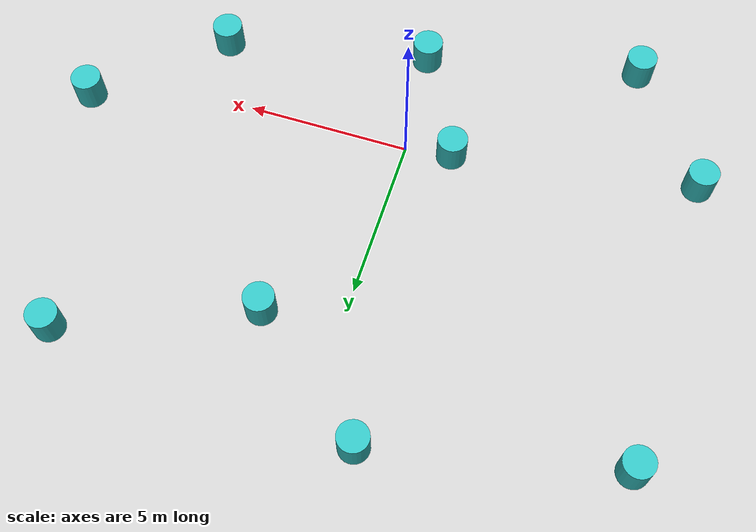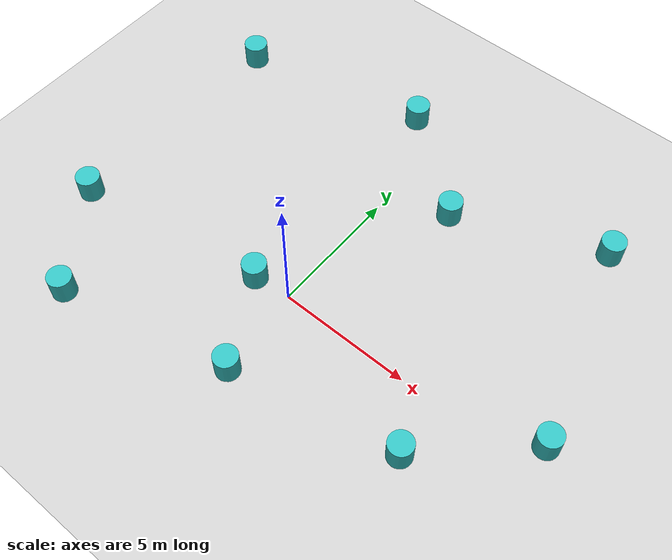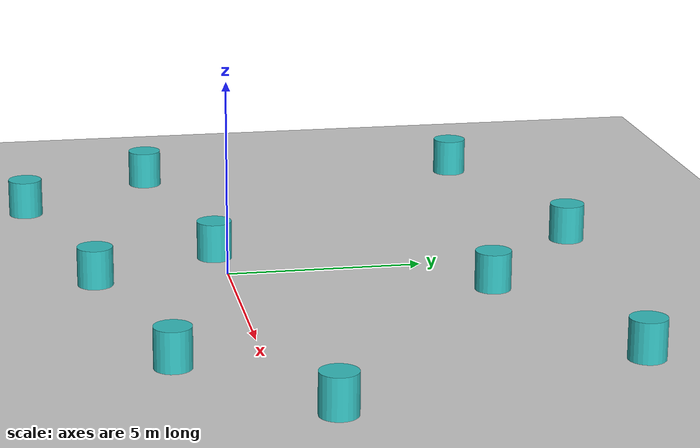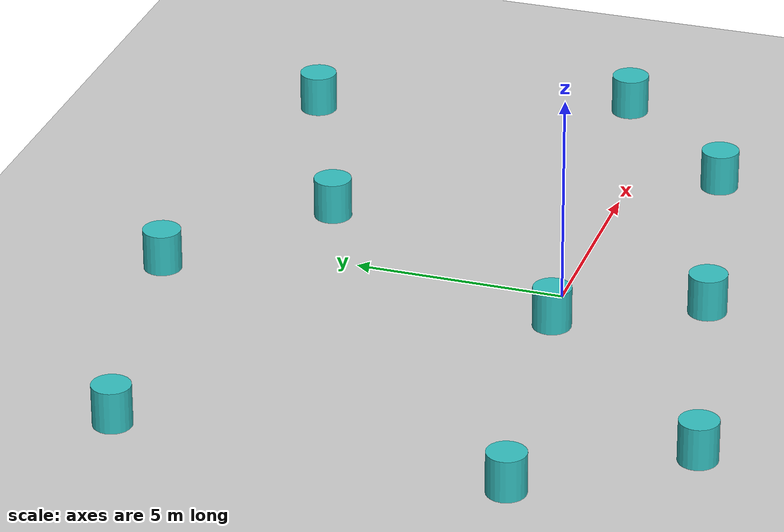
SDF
<sdf version="1.6">
 <world name="default">
  <light name="sun" type="directional">
   <pose>0 0 10 0 -0 0</pose>
   <diffuse>0.8 0.8 0.8 1</diffuse>
   <specular>0.2 0.2 0.2 1</specular>
   <attenuation>
    <range>1000</range>
    <constant>0.9</constant>
    <linear>0.01</linear>
    <quadratic>0.001</quadratic>
   </attenuation>
   <direction>-0.5 0.1 -0.9</direction>
  </light>
  <model name="ground_plane">
   <static>1</static>
   <link name="link">
    <collision name="collision">
     <geometry><plane><normal>0 0 1</normal><size>20 20</size></plane></geometry>
     <surface><friction><ode><mu>100</mu><mu2>50</mu2></ode></friction></surface>
    </collision>
    <visual name="visual">
     <cast_shadows>0</cast_shadows>
     <geometry><plane><normal>0 0 1</normal><size>20 20</size></plane></geometry>
     <material>
      <script><uri>file://media/materials/scripts/gazebo.material</uri><name>Gazebo/Grey</name></script>
     </material>
    </visual>
   </link>
  </model>
  <gravity>0 0 -9.8</gravity>
  <magnetic_field>6e-06 2.3e-05 -4.2e-05</magnetic_field>
  <atmosphere type="adiabatic"/>
  <physics name="default_physics" default="0" type="ode">
   <max_step_size>0.001</max_step_size>
   <real_time_factor>1</real_time_factor>
   <real_time_update_rate>1000</real_time_update_rate>
  </physics>
  <scene><ambient>0.4 0.4 0.4 1</ambient><background>0.7 0.7 0.7 1</background><shadows>1</shadows></scene>
  <spherical_coordinates>
   <surface_model>EARTH_WGS84</surface_model>
   <latitude_deg>0</latitude_deg>
   <longitude_deg>0</longitude_deg>
   <elevation>0</elevation>
   <heading_deg>0</heading_deg>
  </spherical_coordinates>
  <model name="unit_cylinder">
   <pose>9.937 1.0708 0.499998 3e-06 -2e-06 0</pose>
   <link name="link">
    <inertial>
     <mass>1</mass>
     <inertia><ixx>0.145833</ixx><ixy>0</ixy><ixz>0</ixz><iyy>0.145833</iyy><iyz>0</iyz><izz>0.125</izz></inertia>
    </inertial>
    <collision name="collision">
     <geometry><cylinder><radius>0.455</radius><length>1</length></cylinder></geometry>
    </collision>
    <visual name="visual">
     <geometry><cylinder><radius>0.455</radius><length>1</length></cylinder></geometry>
     <material>
      <script><name>Gazebo/Turquoise</name><uri>file://media/materials/scripts/gazebo.material</uri></script>
     </material>
    </visual>
   </link>
  </model>
  <model name="unit_cylinder_0">
   <pose>0.309204 -3.3864 0.499992 -3e-06 4e-06 0</pose>
   <link name="link">
    <inertial>
     <mass>1</mass>
     <inertia><ixx>0.145833</ixx><ixy>0</ixy><ixz>0</ixz><iyy>0.145833</iyy><iyz>0</iyz><izz>0.125</izz></inertia>
    </inertial>
    <collision name="collision">
     <geometry><cylinder><radius>0.455</radius><length>1</length></cylinder></geometry>
    </collision>
    <visual name="visual">
     <geometry><cylinder><radius>0.455</radius><length>1</length></cylinder></geometry>
     <material>
      <script><name>Gazebo/Turquoise</name><uri>file://media/materials/scripts/gazebo.material</uri></script>
     </material>
    </visual>
   </link>
  </model>
  <model name="unit_cylinder_1">
   <pose>-1.4 -0.163896 0.499993 -3e-06 -2e-06 0</pose>
   <link name="link">
    <inertial>
     <mass>1</mass>
     <inertia><ixx>0.145833</ixx><ixy>0</ixy><ixz>0</ixz><iyy>0.145833</iyy><iyz>0</iyz><izz>0.125</izz></inertia>
    </inertial>
    <collision name="collision">
     <geometry><cylinder><radius>0.455</radius><length>1</length></cylinder></geometry>
    </collision>
    <visual name="visual">
     <geometry><cylinder><radius>0.455</radius><length>1</length></cylinder></geometry>
     <material>
      <script><name>Gazebo/Turquoise</name><uri>file://media/materials/scripts/gazebo.material</uri></script>
     </material>
    </visual>
   </link>
  </model>
  <model name="unit_cylinder_2">
   <pose>-8.5793 7.7548 0.499993 -3e-06 -2e-06 0</pose>
   <link name="link">
    <inertial>
     <mass>1</mass>
     <inertia><ixx>0.145833</ixx><ixy>0</ixy><ixz>0</ixz><iyy>0.145833</iyy><iyz>0</iyz><izz>0.125</izz></inertia>
    </inertial>
    <collision name="collision">
     <geometry><cylinder><radius>0.455</radius><length>1</length></cylinder></geometry>
    </collision>
    <visual name="visual">
     <geometry><cylinder><radius>0.455</radius><length>1</length></cylinder></geometry>
     <material>
      <script><name>Gazebo/Turquoise</name><uri>file://media/materials/scripts/gazebo.material</uri></script>
     </material>
    </visual>
   </link>
  </model>
  <model name="unit_cylinder_3">
   <pose>-8.707 -1.2763 0.499993 -4e-06 -1e-06 0</pose>
   <link name="link">
    <inertial>
     <mass>1</mass>
     <inertia><ixx>0.145833</ixx><ixy>0</ixy><ixz>0</ixz><iyy>0.145833</iyy><iyz>0</iyz><izz>0.125</izz></inertia>
    </inertial>
    <collision name="collision">
     <geometry><cylinder><radius>0.455</radius><length>1</length></cylinder></geometry>
    </collision>
    <visual name="visual">
     <geometry><cylinder><radius>0.455</radius><length>1</length></cylinder></geometry>
     <material>
      <script><name>Gazebo/Turquoise</name><uri>file://media/materials/scripts/gazebo.material</uri></script>
     </material>
    </visual>
   </link>
  </model>
  <model name="unit_cylinder_4">
   <pose>6.5326 -2.1093 0.499996 4e-06 2e-06 0.014982</pose>
   <link name="link">
    <inertial>
     <mass>1</mass>
     <inertia><ixx>0.145833</ixx><ixy>0</ixy><ixz>0</ixz><iyy>0.145833</iyy><iyz>0</iyz><izz>0.125</izz></inertia>
    </inertial>
    <collision name="collision">
     <geometry><cylinder><radius>0.455</radius><length>1</length></cylinder></geometry>
    </collision>
    <visual name="visual">
     <geometry><cylinder><radius>0.455</radius><length>1</length></cylinder></geometry>
     <material>
      <script><name>Gazebo/Turquoise</name><uri>file://media/materials/scripts/gazebo.material</uri></script>
     </material>
    </visual>
   </link>
  </model>
  <model name="unit_cylinder_5">
   <pose>2.2695 6.3728 0.499992 -3e-06 -4e-06 -0</pose>
   <link name="link">
    <inertial>
     <mass>1</mass>
     <inertia><ixx>0.145833</ixx><ixy>0</ixy><ixz>0</ixz><iyy>0.145833</iyy><iyz>0</iyz><izz>0.125</izz></inertia>
    </inertial>
    <collision name="collision">
     <geometry><cylinder><radius>0.455</radius><length>1</length></cylinder></geometry>
    </collision>
    <visual name="visual">
     <geometry><cylinder><radius>0.455</radius><length>1</length></cylinder></geometry>
     <material>
      <script><name>Gazebo/Turquoise</name><uri>file://media/materials/scripts/gazebo.material</uri></script>
     </material>
    </visual>
   </link>
  </model>
  <model name="unit_cylinder_6">
   <pose>7.7247 8.6222 0.499992 -3e-06 4e-06 0</pose>
   <link name="link">
    <inertial>
     <mass>1</mass>
     <inertia><ixx>0.145833</ixx><ixy>0</ixy><ixz>0</ixz><iyy>0.145833</iyy><iyz>0</iyz><izz>0.125</izz></inertia>
    </inertial>
    <collision name="collision">
     <geometry><cylinder><radius>0.455</radius><length>1</length></cylinder></geometry>
    </collision>
    <visual name="visual">
     <geometry><cylinder><radius>0.455</radius><length>1</length></cylinder></geometry>
     <material>
      <script><name>Gazebo/Turquoise</name><uri>file://media/materials/scripts/gazebo.material</uri></script>
     </material>
    </visual>
   </link>
  </model>
  <model name="unit_cylinder_7">
   <pose>-6.1843 -4.8284 0.499996 4e-06 3e-06 -0</pose>
   <link name="link">
    <inertial>
     <mass>1</mass>
     <inertia><ixx>0.145833</ixx><ixy>0</ixy><ixz>0</ixz><iyy>0.145833</iyy><iyz>0</iyz><izz>0.125</izz></inertia>
    </inertial>
    <collision name="collision">
     <geometry><cylinder><radius>0.455</radius><length>1</length></cylinder></geometry>
    </collision>
    <visual name="visual">
     <geometry><cylinder><radius>0.455</radius><length>1</length></cylinder></geometry>
     <material>
      <script><name>Gazebo/Turquoise</name><uri>file://media/materials/scripts/gazebo.material</uri></script>
     </material>
    </visual>
   </link>
  </model>
  <model name="unit_cylinder_8">
   <pose>-1.4418 9.3211 0.499992 -2e-06 2e-06 -0</pose>
   <link name="link">
    <inertial>
     <mass>1</mass>
     <inertia><ixx>0.145833</ixx><ixy>0</ixy><ixz>0</ixz><iyy>0.145833</iyy><iyz>0</iyz><izz>0.125</izz></inertia>
    </inertial>
    <collision name="collision">
     <geometry><cylinder><radius>0.455</radius><length>1</length></cylinder></geometry>
    </collision>
    <visual name="visual">
     <geometry><cylinder><radius>0.455</radius><length>1</length></cylinder></geometry>
     <material>
      <script><name>Gazebo/Turquoise</name><uri>file://media/materials/scripts/gazebo.material</uri></script>
     </material>
    </visual>
   </link>
  </model>
 </world>
</sdf>
